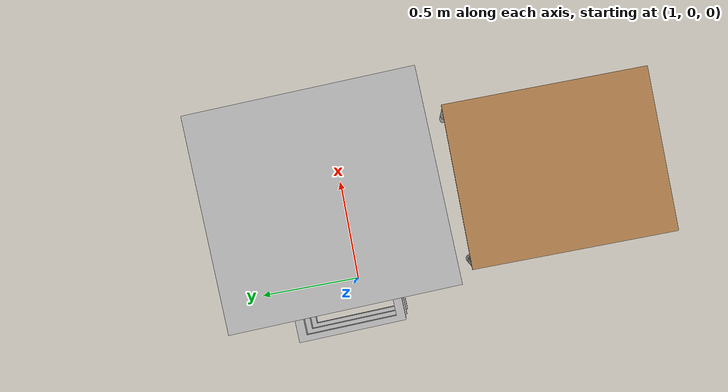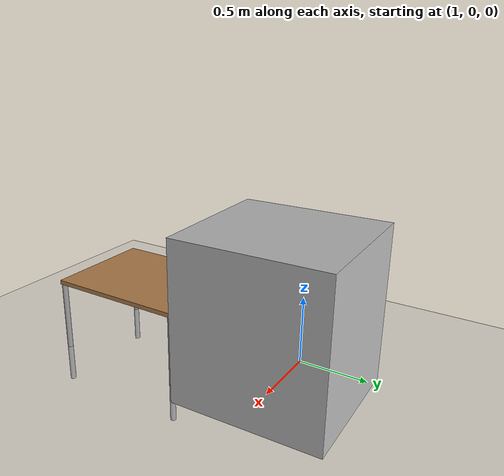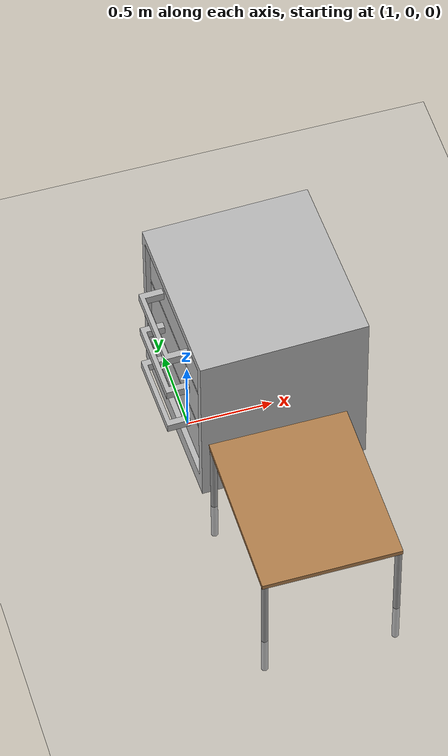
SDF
<sdf version='1.6'>
  <world name='default'>
    <physics name='default_physics' default='0' type='ode'>
      <ode>
        <solver>
          <type>quick</type>
          <iters>20</iters>
          <sor>1</sor>
          <use_dynamic_moi_rescaling>0</use_dynamic_moi_rescaling>
        </solver>
        <constraints>
          <cfm>0</cfm>
          <erp>0.2</erp>
          <contact_max_correcting_vel>100</contact_max_correcting_vel>
          <contact_surface_layer>0</contact_surface_layer>
        </constraints>
      </ode>
      <real_time_update_rate>1000</real_time_update_rate>
      <max_step_size>0.001</max_step_size>
      <real_time_factor>1</real_time_factor>
    </physics>
    <light name='light1' type='directional'>
      <cast_shadows>1</cast_shadows>
      <pose frame=''>-2 0 4 0 -0 0</pose>
      <diffuse>1 1 1 1</diffuse>
      <specular>0.1 0.1 0.1 1</specular>
      <attenuation>
        <range>20</range>
        <constant>0.9</constant>
        <linear>0.01</linear>
        <quadratic>0.001</quadratic>
      </attenuation>
      <direction>0.2 0 -1</direction>
    </light>
    <model name='ground_plane'>
      <static>1</static>
      <link name='link'>
        <collision name='collision'>
          <geometry>
            <plane>
              <normal>0 0 1</normal>
              <size>100 100</size>
            </plane>
          </geometry>
          <surface>
            <contact>
              <collide_bitmask>65535</collide_bitmask>
              <ode/>
            </contact>
            <friction>
              <ode>
                <mu>100</mu>
                <mu2>50</mu2>
              </ode>
              <torsional>
                <ode/>
              </torsional>
            </friction>
            <bounce/>
          </surface>
          <max_contacts>10</max_contacts>
        </collision>
        <visual name='visual'>
          <cast_shadows>0</cast_shadows>
          <geometry>
            <plane>
              <normal>0 0 1</normal>
              <size>100 100</size>
            </plane>
          </geometry>
          <material>
            <script>
              <uri>file://media/materials/scripts/gazebo.material</uri>
              <name>Gazebo/Grey</name>
            </script>
          </material>
        </visual>
        <self_collide>0</self_collide>
        <enable_wind>0</enable_wind>
        <kinematic>0</kinematic>
      </link>
    </model>
    <model name='table1'>
      <static>1</static>
      <link name='link'>
        <collision name='surface'>
          <pose frame=''>0 0 0.8 0 -0 0</pose>
          <geometry>
            <box>
              <size>1 0.8 0.03</size>
            </box>
          </geometry>
          <surface>
            <bounce/>
            <friction>
              <ode/>
              <torsional>
                <ode/>
              </torsional>
            </friction>
            <contact>
              <ode/>
            </contact>
          </surface>
          <max_contacts>10</max_contacts>
        </collision>
        <visual name='visual1'>
          <pose frame=''>0 0 0.8 0 -0 0</pose>
          <geometry>
            <box>
              <size>1 0.8 0.03</size>
            </box>
          </geometry>
          <material>
            <script>
              <uri>file://media/materials/scripts/gazebo.material</uri>
              <name>Gazebo/Wood</name>
            </script>
          </material>
        </visual>
        <collision name='front_left_leg'>
          <pose frame=''>0.48 0.38 0.4 0 -0 0</pose>
          <geometry>
            <cylinder>
              <radius>0.02</radius>
              <length>0.8</length>
            </cylinder>
          </geometry>
          <surface>
            <bounce/>
            <friction>
              <ode/>
              <torsional>
                <ode/>
              </torsional>
            </friction>
            <contact>
              <ode/>
            </contact>
          </surface>
          <max_contacts>10</max_contacts>
        </collision>
        <visual name='front_left_leg'>
          <pose frame=''>0.48 0.38 0.4 0 -0 0</pose>
          <geometry>
            <cylinder>
              <radius>0.02</radius>
              <length>0.8</length>
            </cylinder>
          </geometry>
          <material>
            <script>
              <uri>file://media/materials/scripts/gazebo.material</uri>
              <name>Gazebo/Grey</name>
            </script>
          </material>
        </visual>
        <collision name='front_right_leg'>
          <pose frame=''>0.48 -0.38 0.4 0 -0 0</pose>
          <geometry>
            <cylinder>
              <radius>0.02</radius>
              <length>0.8</length>
            </cylinder>
          </geometry>
          <surface>
            <bounce/>
            <friction>
              <ode/>
              <torsional>
                <ode/>
              </torsional>
            </friction>
            <contact>
              <ode/>
            </contact>
          </surface>
          <max_contacts>10</max_contacts>
        </collision>
        <visual name='front_right_leg'>
          <pose frame=''>0.48 -0.38 0.4 0 -0 0</pose>
          <geometry>
            <cylinder>
              <radius>0.02</radius>
              <length>0.8</length>
            </cylinder>
          </geometry>
          <material>
            <script>
              <uri>file://media/materials/scripts/gazebo.material</uri>
              <name>Gazebo/Grey</name>
            </script>
          </material>
        </visual>
        <collision name='back_right_leg'>
          <pose frame=''>-0.48 -0.38 0.4 0 -0 0</pose>
          <geometry>
            <cylinder>
              <radius>0.02</radius>
              <length>0.8</length>
            </cylinder>
          </geometry>
          <surface>
            <bounce/>
            <friction>
              <ode/>
              <torsional>
                <ode/>
              </torsional>
            </friction>
            <contact>
              <ode/>
            </contact>
          </surface>
          <max_contacts>10</max_contacts>
        </collision>
        <visual name='back_right_leg'>
          <pose frame=''>-0.48 -0.38 0.4 0 -0 0</pose>
          <geometry>
            <cylinder>
              <radius>0.02</radius>
              <length>0.8</length>
            </cylinder>
          </geometry>
          <material>
            <script>
              <uri>file://media/materials/scripts/gazebo.material</uri>
              <name>Gazebo/Grey</name>
            </script>
          </material>
        </visual>
        <collision name='back_left_leg'>
          <pose frame=''>-0.48 0.38 0.4 0 -0 0</pose>
          <geometry>
            <cylinder>
              <radius>0.02</radius>
              <length>0.8</length>
            </cylinder>
          </geometry>
          <surface>
            <bounce/>
            <friction>
              <ode/>
              <torsional>
                <ode/>
              </torsional>
            </friction>
            <contact>
              <ode/>
            </contact>
          </surface>
          <max_contacts>10</max_contacts>
        </collision>
        <visual name='back_left_leg'>
          <pose frame=''>-0.48 0.38 0.4 0 -0 0</pose>
          <geometry>
            <cylinder>
              <radius>0.02</radius>
              <length>0.8</length>
            </cylinder>
          </geometry>
          <material>
            <script>
              <uri>file://media/materials/scripts/gazebo.material</uri>
              <name>Gazebo/Grey</name>
            </script>
          </material>
        </visual>
        <velocity_decay>
          <linear>0</linear>
          <angular>0</angular>
        </velocity_decay>
        <self_collide>0</self_collide>
        <kinematic>0</kinematic>
        <gravity>1</gravity>
        <enable_wind>0</enable_wind>
      </link>
      <pose frame=''>1.36 -1.07 -0.28 0 0 -1.57</pose>
    </model>

    <model name='Cabinet'>
      <link name='cabinet'>
        <pose>0 0 0 0 0 0</pose>
        <inertial>
          <inertia>
            <ixx>2.501</ixx>
            <ixy>0</ixy>
            <ixz>0</ixz>
            <iyy>2.501</iyy>
            <iyz>0</iyz>
            <izz>5</izz>
          </inertia>
          <mass>120</mass>
          <pose>0 0 0 0 -0 0</pose>
        </inertial>
        <visual name='cabinet_visual'>
          <geometry>
            <mesh>
              <uri>model://cabinet_drawer/meshes/cabinet.dae</uri>
              <scale>1 1 1</scale>
            </mesh>
          </geometry>
        </visual>
        <collision name='cabinet_collision'>
          <geometry>
            <mesh>
              <uri>model://cabinet_drawer/meshes/cabinet.dae</uri>
              <scale>1 1 1</scale>
            </mesh>
          </geometry>
          <max_contacts>10</max_contacts>
          <surface>
            <contact>
              <ode/>
            </contact>
            <bounce/>
            <friction>
              <torsional>
                <ode/>
              </torsional>
              <ode/>
            </friction>
          </surface>
        </collision>
        <self_collide>0</self_collide>
        <enable_wind>0</enable_wind>
        <kinematic>0</kinematic>
      </link>
      <link name='drawer1'>
        <pose>0.013 -0.23 0.9 0 -0 0</pose>
        <inertial>
          <inertia>
            <ixx>0.176895</ixx>
            <ixy>0</ixy>
            <ixz>0</ixz>
            <iyy>0.221609</iyy>
            <iyz>0</iyz>
            <izz>0.359975</izz>
          </inertia>
          <mass>3</mass>
          <pose>0 0 0 0 -0 0</pose>
        </inertial>
        <visual name='drawer_visual1'>
          <geometry>
            <mesh>
              <uri>model://cabinet_drawer/meshes/drawer.dae</uri>
              <scale>1 1 1</scale>
            </mesh>
          </geometry>
        </visual>
        <collision name='drawer_collision1'>
          <geometry>
            <mesh>
              <uri>model://cabinet_drawer/meshes/drawer.dae</uri>
              <scale>1 1 1</scale>
            </mesh>
          </geometry>
          <max_contacts>10</max_contacts>
          <surface>
            <contact>
              <ode/>
            </contact>
            <bounce/>
            <friction>
              <torsional>
                <ode/>
              </torsional>
              <ode/>
            </friction>
          </surface>
        </collision>
        <self_collide>0</self_collide>
        <enable_wind>0</enable_wind>
        <kinematic>0</kinematic>
      </link>
      <joint name='drawer_joint1' type='prismatic'>
        <child>drawer1</child>
        <parent>cabinet</parent>
        <axis>
          <limit>
            <lower>-0.6</lower>
            <upper>0</upper>
          </limit>
          <xyz>0 1 0</xyz>
          <dynamics>
            <spring_reference>0</spring_reference>
            <spring_stiffness>0</spring_stiffness>
          </dynamics>
        </axis>
      </joint>
      <link name='drawer2'>
        <pose>0.013 -0.23 0.6 0 -0 0</pose>
        <inertial>
          <inertia>
            <ixx>0.176895</ixx>
            <ixy>0</ixy>
            <ixz>0</ixz>
            <iyy>0.221609</iyy>
            <iyz>0</iyz>
            <izz>0.359975</izz>
          </inertia>
          <mass>3</mass>
          <pose>0 0 0 0 -0 0</pose>
        </inertial>
        <visual name='drawer_visual2'>
          <geometry>
            <mesh>
              <uri>model://cabinet_drawer/meshes/drawer.dae</uri>
              <scale>1 1 1</scale>
            </mesh>
          </geometry>
        </visual>
        <collision name='drawer_collision2'>
          <geometry>
            <mesh>
              <uri>model://cabinet_drawer/meshes/drawer.dae</uri>
              <scale>1 1 1</scale>
            </mesh>
          </geometry>
          <max_contacts>10</max_contacts>
          <surface>
            <contact>
              <ode/>
            </contact>
            <bounce/>
            <friction>
              <torsional>
                <ode/>
              </torsional>
              <ode/>
            </friction>
          </surface>
        </collision>
        <self_collide>0</self_collide>
        <enable_wind>0</enable_wind>
        <kinematic>0</kinematic>
      </link>
      <joint name='drawer_joint2' type='prismatic'>
        <child>drawer2</child>
        <parent>cabinet</parent>
        <axis>
          <limit>
            <lower>-0.6</lower>
            <upper>0</upper>
          </limit>
          <xyz>0 1 0</xyz>
          <dynamics>
            <spring_reference>0</spring_reference>
            <spring_stiffness>0</spring_stiffness>
          </dynamics>
        </axis>
      </joint>
      <link name='drawer3'>
        <pose>0.013 -0.23 0.3 0 -0 0</pose>
        <inertial>
          <inertia>
            <ixx>0.176895</ixx>
            <ixy>0</ixy>
            <ixz>0</ixz>
            <iyy>0.221609</iyy>
            <iyz>0</iyz>
            <izz>0.359975</izz>
          </inertia>
          <mass>3</mass>
          <pose>0 0 0 0 -0 0</pose>
        </inertial>
        <visual name='drawer_visual3'>
          <geometry>
            <mesh>
              <uri>model://cabinet_drawer/meshes/drawer.dae</uri>
              <scale>1 1 1</scale>
            </mesh>
          </geometry>
        </visual>
        <collision name='drawer_collision3'>
          <geometry>
            <mesh>
              <uri>model://cabinet_drawer/meshes/drawer.dae</uri>
              <scale>1 1 1</scale>
            </mesh>
          </geometry>
          <max_contacts>10</max_contacts>
          <surface>
            <contact>
              <ode/>
            </contact>
            <bounce/>
            <friction>
              <torsional>
                <ode/>
              </torsional>
              <ode/>
            </friction>
          </surface>
        </collision>
        <self_collide>0</self_collide>
        <enable_wind>0</enable_wind>
        <kinematic>0</kinematic>
      </link>
      <joint name='drawer_joint3' type='prismatic'>
        <child>drawer3</child>
        <parent>cabinet</parent>
        <axis>
          <limit>
            <lower>-0.6</lower>
            <upper>0</upper>
          </limit>
          <xyz>0 1 0</xyz>
          <dynamics>
            <spring_reference>0</spring_reference>
            <spring_stiffness>0</spring_stiffness>
          </dynamics>
        </axis>
      </joint>
      <pose>1.35 0.04 0.04 0 0 -1.5429</pose>
    </model>

    <gui fullscreen='0'>
      <camera name='user_camera'>
        <pose frame=''>0.429277 -0.126008 2.28837 0 1.5698 0.072179</pose>
        <view_controller>orbit</view_controller>
        <projection_type>perspective</projection_type>
      </camera>
    </gui>
    <gravity>0 0 -9.81</gravity>
    <magnetic_field>6e-06 2.3e-05 -4.2e-05</magnetic_field>
    <atmosphere type='adiabatic'/>
    <scene>
      <ambient>0.4 0.4 0.4 1</ambient>
      <background>0.7 0.7 0.7 1</background>
      <shadows>1</shadows>
    </scene>
    <audio>
      <device>default</device>
    </audio>
    <wind/>
    <spherical_coordinates>
      <surface_model>EARTH_WGS84</surface_model>
      <latitude_deg>0</latitude_deg>
      <longitude_deg>0</longitude_deg>
      <elevation>0</elevation>
      <heading_deg>0</heading_deg>
    </spherical_coordinates>

    <model name='camera_A'>
      <pose>0.3 0.8 1.4 0 0.8 -0.6</pose>
      <static>1</static>

      <frame name="camera_A_frame" attached_to="world">
      <pose>0.3 0.8 1.4 0 0.8 -0.6</pose>
      </frame>

      <link name='camera_A_left_link'>
          <pose relative_to='camera_A_frame'>0 -0.03 0 0 0 0</pose>
          <visual name='visual'>
          <geometry>
            <box>
              <size>0 0 0</size>
            </box>
          </geometry>
        </visual>
        <sensor name='zed_B_left' type='camera'>
          <visualize>0</visualize>
          <always_on>1</always_on>
          <update_rate>100</update_rate>
          <camera>
            <horizontal_fov>1.7633</horizontal_fov>
            <image>
              <format>R8G8B8</format>
              <width>1280</width>
              <height>720</height>
            </image>
            <clip>
              <near>0.02</near>
              <far>300</far>
            </clip>
            <noise>
              <type>gaussian</type>
              <mean>0</mean>
              <stddev>0.007</stddev>
            </noise>
            <distortion>
              <k1>-0.0436936</k1>
              <k2>0.0146165</k2>
              <p1>-0.00657332</p1>
              <p2>-0.0002169</p2>
              <k3>8.4328e-05</k3>
              <center>0.5 0.5</center>
            </distortion>
          </camera>
          <plugin name='camera_controller' filename='libgazebo_ros_camera.so'>
            <cameraName>zed2_A/zed_node/left_raw</cameraName>
            <imageTopicName>image_raw_color</imageTopicName>
            <cameraInfoTopicName>camera_info</cameraInfoTopicName>
            <distortionK1>-0.043693598</distortionK1>
            <distortionK2>0.0146164996</distortionK2>
            <distortionT1>-0.006573319</distortionT1>
            <distortionT2>-0.000216900</distortionT2>
            <distortionK3>0.000084328</distortionK3>
            <CxPrime>648.5</CxPrime>
            <Cx>648.5</Cx>
            <Cy>366.8340148925781</Cy>
            <hackBaseline>0.0</hackBaseline>
          </plugin>
        </sensor>
        <self_collide>0</self_collide>
        <enable_wind>0</enable_wind>
        <kinematic>0</kinematic>
      </link>

      <link name='camera_A_right_link'>
      <pose relative_to='camera_A_frame'>0 0.03 0 0 0 0</pose>
          <visual name='visual'>
          <geometry>
            <box>
              <size>0 0 0</size>
            </box>
          </geometry>
        </visual>
        <sensor name='zed_B_right' type='camera'>
          <visualize>0</visualize>
          <always_on>1</always_on>
          <update_rate>100</update_rate>
          <camera>
            <horizontal_fov>1.7633</horizontal_fov>
            <image>
              <format>R8G8B8</format>
              <width>1280</width>
              <height>720</height>
            </image>
            <clip>
              <near>0.02</near>
              <far>300</far>
            </clip>
            <noise>
              <type>gaussian</type>
              <mean>0</mean>
              <stddev>0.007</stddev>
            </noise>
            <distortion>
              <k1>-0.0436936</k1>
              <k2>0.0146165</k2>
              <p1>-0.00657332</p1>
              <p2>-0.0002169</p2>
              <k3>8.4328e-05</k3>
              <center>0.5 0.5</center>
            </distortion>
          </camera>
          <plugin name='camera_controller' filename='libgazebo_ros_camera.so'>
            <cameraName>zed2_A/zed_node/right_raw</cameraName>
            <imageTopicName>image_raw_color</imageTopicName>
            <cameraInfoTopicName>camera_info</cameraInfoTopicName>
            <distortionK1>-0.043693598</distortionK1>
            <distortionK2>0.0146164996</distortionK2>
            <distortionT1>-0.006573319</distortionT1>
            <distortionT2>-0.000216900</distortionT2>
            <distortionK3>0.000084328</distortionK3>
            <CxPrime>648.5</CxPrime>
            <Cx>648.5</Cx>
            <Cy>366.8340148925781</Cy>
            <hackBaseline>0.0</hackBaseline>
          </plugin>
        </sensor>
        <self_collide>0</self_collide>
        <enable_wind>0</enable_wind>
        <kinematic>0</kinematic>
      </link>
    </model>

    <model name='camera_B'>
      <pose>0.3 -0.8 1.4 0 0.8 0.6</pose>
      <static>1</static>

      <frame name="camera_B_frame" attached_to="world">
      <pose>0.3 -0.8 1.4 0 0.8 0.6</pose>
      </frame>

      <link name='camera_B_left_link'>
          <pose relative_to='camera_B_frame'>0 -0.04 0 0 0 0</pose>
          <visual name='visual'>
          <geometry>
            <box>
              <size>0 0 0</size>
            </box>
          </geometry>
        </visual>
        <sensor name='zed_B_left' type='camera'>
          <visualize>0</visualize>
          <always_on>1</always_on>
          <update_rate>100</update_rate>
          <camera>
            <horizontal_fov>1.7633</horizontal_fov>
            <image>
              <format>R8G8B8</format>
              <width>1280</width>
              <height>720</height>
            </image>
            <clip>
              <near>0.02</near>
              <far>300</far>
            </clip>
            <noise>
              <type>gaussian</type>
              <mean>0</mean>
              <stddev>0.007</stddev>
            </noise>
            <distortion>
              <k1>-0.0436936</k1>
              <k2>0.0146165</k2>
              <p1>-0.00657332</p1>
              <p2>-0.0002169</p2>
              <k3>8.4328e-05</k3>
              <center>0.5 0.5</center>
            </distortion>
          </camera>
          <plugin name='camera_controller' filename='libgazebo_ros_camera.so'>
            <cameraName>zed2_B/zed_node/left_raw</cameraName>
            <imageTopicName>image_raw_color</imageTopicName>
            <cameraInfoTopicName>camera_info</cameraInfoTopicName>
            <distortionK1>-0.043693598</distortionK1>
            <distortionK2>0.0146164996</distortionK2>
            <distortionT1>-0.006573319</distortionT1>
            <distortionT2>-0.000216900</distortionT2>
            <distortionK3>0.000084328</distortionK3>
            <CxPrime>648.5</CxPrime>
            <Cx>648.5</Cx>
            <Cy>366.8340148925781</Cy>
            <hackBaseline>0.0</hackBaseline>
          </plugin>
        </sensor>
        <self_collide>0</self_collide>
        <enable_wind>0</enable_wind>
        <kinematic>0</kinematic>
      </link>

      <link name='camera_B_right_link'>
      <pose relative_to='camera_B_frame'>0 0.04 0 0 0 0</pose>
          <visual name='visual'>
          <geometry>
            <box>
              <size>0 0 0</size>
            </box>
          </geometry>
        </visual>
        <sensor name='zed_B_right' type='camera'>
          <visualize>0</visualize>
          <always_on>1</always_on>
          <update_rate>100</update_rate>
          <camera>
            <horizontal_fov>1.7633</horizontal_fov>
            <image>
              <format>R8G8B8</format>
              <width>1280</width>
              <height>720</height>
            </image>
            <clip>
              <near>0.02</near>
              <far>300</far>
            </clip>
            <noise>
              <type>gaussian</type>
              <mean>0</mean>
              <stddev>0.007</stddev>
            </noise>
            <distortion>
              <k1>-0.0436936</k1>
              <k2>0.0146165</k2>
              <p1>-0.00657332</p1>
              <p2>-0.0002169</p2>
              <k3>8.4328e-05</k3>
              <center>0.5 0.5</center>
            </distortion>
          </camera>
          <plugin name='camera_controller' filename='libgazebo_ros_camera.so'>
            <cameraName>zed2_B/zed_node/right_raw</cameraName>
            <imageTopicName>image_raw_color</imageTopicName>
            <cameraInfoTopicName>camera_info</cameraInfoTopicName>
            <distortionK1>-0.043693598</distortionK1>
            <distortionK2>0.0146164996</distortionK2>
            <distortionT1>-0.006573319</distortionT1>
            <distortionT2>-0.000216900</distortionT2>
            <distortionK3>0.000084328</distortionK3>
            <CxPrime>648.5</CxPrime>
            <Cx>648.5</Cx>
            <Cy>366.8340148925781</Cy>
            <hackBaseline>0.0</hackBaseline>
          </plugin>
        </sensor>
        <self_collide>0</self_collide>
        <enable_wind>0</enable_wind>
        <kinematic>0</kinematic>
      </link>
    </model>
  </world>
</sdf>
